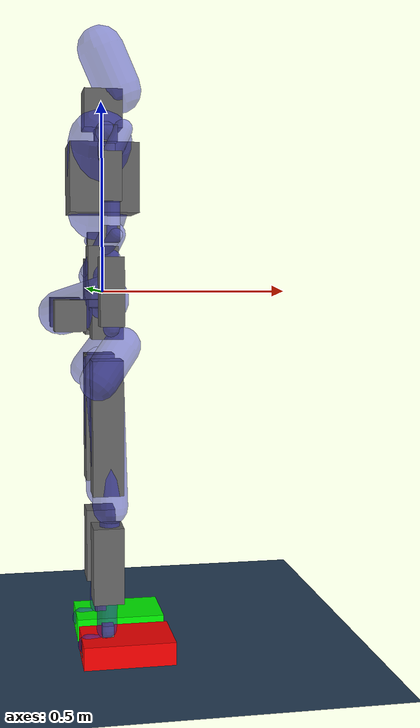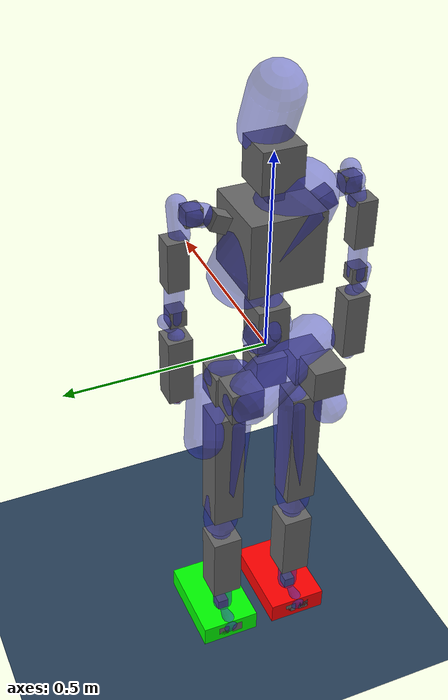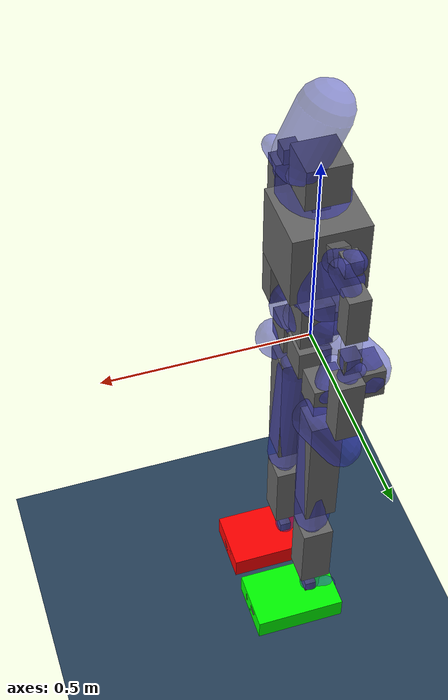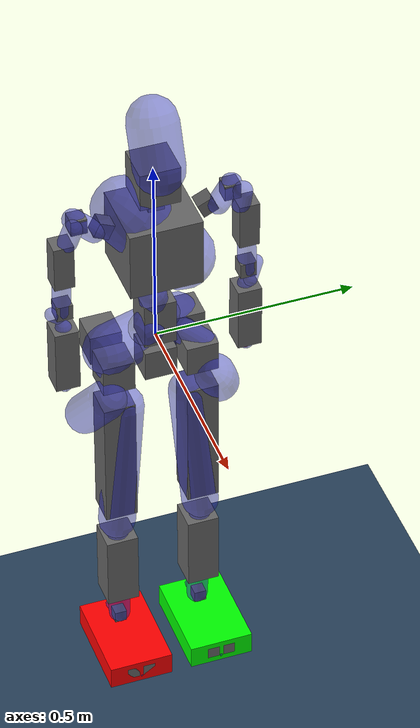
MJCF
<mujoco model="GR1T2">
  <compiler angle="radian" autolimits="true"/>
  <default>
    <motor ctrlrange="-1 1" ctrllimited="true"/>
    <default class="body">
      <geom type="box" condim="1" friction="1.0 0.05 0.05" solimp=".9 .99 .003" solref=".015 1"/>
      <joint type="hinge" limited="true" solimplimit="0 .99 .01"/>
      <site size="10" group="3"/>
    </default>
  </default>
  <asset>
    <material name="LightGrey" specular="0.9" shininess="0.9" rgba="0.4 0.4 0.4 1.0"/>
    <material name="Purple" specular="0.9" shininess="0.9" rgba="0.58 0.42 0.58 1.0"/>
    <material name="Black" specular="0.9" shininess="0.9" rgba="0.1 0.1 0.1 1.0"/>
    <texture type="skybox" builtin="gradient" rgb1=".3 .5 .7" rgb2="0 0 0" width="32" height="512"/>
    <texture name="body" type="cube" builtin="flat" mark="cross" width="128" height="128" rgb1="0.8 0.6 0.4" rgb2="0.8 0.6 0.4" markrgb="1 1 1" random="0.01"/>
    <material name="body" texture="body" texuniform="true" rgba="0.8 0.6 .4 1"/>
    <texture name="grid" type="2d" builtin="checker" width="512" height="512" rgb1=".1 .2 .3" rgb2=".2 .3 .4"/>
    <material name="grid" texture="grid" texrepeat="1 1" texuniform="true" reflectance="0.02"/>
    <mesh name="base" file="./meshes/base.STL"/>
    <mesh name="l_thigh_roll" file="./meshes/l_thigh_roll.STL"/>
    <mesh name="l_thigh_yaw" file="./meshes/l_thigh_yaw.STL"/>
    <mesh name="l_thigh_pitch" file="./meshes/l_thigh_pitch.STL"/>
    <mesh name="l_shank_pitch" file="./meshes/l_shank_pitch.STL"/>
    <mesh name="l_foot_pitch" file="./meshes/l_foot_pitch.STL"/>
    <mesh name="l_foot_roll" file="./meshes/l_foot_roll.STL"/>
    <mesh name="r_thigh_roll" file="./meshes/r_thigh_roll.STL"/>
    <mesh name="r_thigh_yaw" file="./meshes/r_thigh_yaw.STL"/>
    <mesh name="r_thigh_pitch" file="./meshes/r_thigh_pitch.STL"/>
    <mesh name="r_shank_pitch" file="./meshes/r_shank_pitch.STL"/>
    <mesh name="r_foot_pitch" file="./meshes/r_foot_pitch.STL"/>
    <mesh name="r_foot_roll" file="./meshes/r_foot_roll.STL"/>
    <mesh name="torso_waist_yaw" file="./meshes/waist_yaw.STL"/>
    <mesh name="torso_waist_pitch" file="./meshes/waist_pitch.STL"/>
    <mesh name="torso_waist_roll" file="./meshes/torso.STL"/>
    <mesh name="head_yaw" file="./meshes/head_yaw.STL"/>
    <mesh name="head_roll" file="./meshes/head_roll.STL"/>
    <mesh name="head_pitch" file="./meshes/head_pitch.STL"/>
    <mesh name="l_upper_arm_pitch" file="./meshes/l_upper_arm_pitch.STL"/>
    <mesh name="l_upper_arm_roll" file="./meshes/l_upper_arm_roll.STL"/>
    <mesh name="l_upper_arm_yaw" file="./meshes/l_upper_arm_yaw.STL"/>
    <mesh name="l_lower_arm_pitch" file="./meshes/l_lower_arm_pitch.STL"/>
    <mesh name="l_hand_yaw" file="./meshes/l_hand_yaw.STL"/>
    <mesh name="l_hand_roll" file="./meshes/l_hand_roll.STL"/>
    <mesh name="l_hand_pitch" file="./meshes/l_hand_pitch.STL"/>
    <mesh name="r_upper_arm_pitch" file="./meshes/r_upper_arm_pitch.STL"/>
    <mesh name="r_upper_arm_roll" file="./meshes/r_upper_arm_roll.STL"/>
    <mesh name="r_upper_arm_yaw" file="./meshes/r_upper_arm_yaw.STL"/>
    <mesh name="r_lower_arm_pitch" file="./meshes/r_lower_arm_pitch.STL"/>
    <mesh name="r_hand_yaw" file="./meshes/r_hand_yaw.STL"/>
    <mesh name="r_hand_roll" file="./meshes/r_hand_roll.STL"/>
    <mesh name="r_hand_pitch" file="./meshes/r_hand_pitch.STL"/>
  </asset>
  <worldbody>
    <camera mode="fixed" name="obs_hands" pos="0.3 0.000 1.535" xyaxes="0.000 1.000 0.000 -0.707 0.000 0.707"/>
    <geom name="floor" pos="0 0 -0.97" size="1 1 0.02" type="plane" material="grid"/>
    <body name="base">
      <freejoint/>
      <inertial pos="-0.0508888 0.000109183 -0.0455794" quat="0.706855 0.707166 0.0123661 -0.0109307" mass="6.45117" diaginertia="0.0149302 0.0127972 0.00640923"/>
      <body name="whole_body">
        <site name="pelvis" pos="0 0 0" size="0.06 0.06 0.06" rgba="1 0 0 0" type="sphere" group="1"/>
        <geom type="capsule" contype="0" conaffinity="0" group="1" density="0" material="Purple" pos="-0.054169 -0.013239 -0.037173" quat="0.640610 -0.688543 -0.339893 0.000000" size="0.061351 0.117647" rgba="0.2 0.2 0.8 0.5"/>
        <geom size="0.04 0.04 0.04" pos="0 0 -0.06" type="box" material="LightGrey"/>
        <camera mode="fixed" name="overshoulder" pos="0.15 0.0 0.6" xyaxes="0.00 -1.000 0.000 0.9 0.00 0.6"/>
        <camera mode="fixed" name="behindhead" pos="-0.1 0.0 0.9" xyaxes="0.00 -1.000 0.000 0.9 0.00 0.6"/>
        <body name="torso_waist_yaw" pos="0 0 0.0065">
          <site name="waist" pos="0 0 0" size="0.06 0.06 0.06" rgba="1 0 0 0" type="sphere" group="1"/>
          <inertial pos="-0.010388 -0.00169636 0.0224709" quat="8.03475e-05 0.752953 -6.91813e-06 0.658075" mass="0.37886" diaginertia="0.000387148 0.000354992 0.000193448"/>
          <joint name="torso_waist_yaw" pos="0 0 0" axis="0.0 0.0 1.0" range="-1.05 1.05"/>
          <geom type="capsule" contype="0" conaffinity="0" group="1" density="0" material="LightGrey" pos="-0.002163 -0.001751 0.034320" quat="0.719941 -0.590695 -0.364369 0.000000" size="0.042177 0.031440" rgba="0.2 0.2 0.8 0.5"/>
          <body name="torso_waist_pitch" pos="0 0 0.055">
            <inertial pos="0.00229173 -0.00229364 0.0425378" quat="0.998452 -0.0194486 0.0162447 0.0495079" mass="4.40328" diaginertia="0.00487449 0.00487146 0.00355351"/>
            <joint name="torso_waist_pitch" pos="0 0 0" axis="0.0 1.0 0.0" range="-0.52 1.22"/>
            <geom type="capsule" contype="0" conaffinity="0" group="1" density="0" material="LightGrey" pos="0.002900 -0.002971 0.040680" quat="0.248723 -0.439684 -0.863027 0.000000" size="0.034557 0.056915" rgba="0.2 0.2 0.8 0.5"/>
            <geom size="0.04 0.04 0.06" type="box" material="LightGrey"/>
            <body name="torso_waist_roll" pos="0 0 0.085">
              <site name="chest" pos="0 0 0.2" size="0.06 0.06 0.06" rgba="1 0 0 0" type="sphere" group="1"/>
              <inertial pos="-0.00982804 -1.2954e-05 0.160653" quat="0.999997 1.84368e-05 -0.00260593 -4.00255e-05" mass="7.34393" diaginertia="0.0305266 0.0217567 0.0136783"/>
              <joint name="torso_waist_roll" pos="0 0 0" axis="1.0 0.0 0.0" range="-0.7 0.7"/>
              <geom pos="-0.006930 0.000319 0.158087" type="capsule" contype="0" conaffinity="0" group="1" density="0" material="LightGrey" quat="0.327322 -0.944323 0.033386 0.000000" size="0.083806 0.105064" rgba="0.2 0.2 0.8 0.5"/>
              <geom size="0.09 0.09 0.09" pos="0 0 0.15" type="box" material="LightGrey"/>
              <body name="head_yaw" pos="0.001 -0.00022551 0.295">
                <site name="neck" pos="0 0 0" size="0.03 0.03 0.03" rgba="1 0 0 0" type="sphere" group="1"/>
                <inertial pos="0.000255273 -1.43143e-05 0.0571737" quat="0.698659 0.111628 0.112302 0.697713" mass="0.168425" diaginertia="0.00013241 0.000126266 6.86988e-05"/>
                <joint name="head_yaw" pos="0 0 0" axis="0.0 0.0 1.0" range="-1.5707963267948966 1.5707963267948966"/>
                <geom type="capsule" contype="0" conaffinity="0" group="1" density="0" material="LightGrey" pos="0.005641 0.000266 0.065163" quat="0.978189 -0.004686 0.207662 0.000000" size="0.021394 0.050376" rgba="0.2 0.2 0.8 0.5"/>
                <geom size="0.02 0.02 0.02" pos="0 0 -0.03" type="box" material="LightGrey"/>
                <body name="head_roll" pos="0 0 0">
                  <inertial pos="-0.000539717 0.00299723 -0.00194711" quat="0.498775 0.509039 0.50481 0.487104" mass="0.0189574" diaginertia="5.66154e-06 3.71917e-06 3.07146e-06"/>
                  <joint name="head_roll" pos="0 0 0" axis="1.0 0.0 0.0" range="-0.2617993877991494 0.2617993877991494"/>
                  <geom type="capsule" contype="0" conaffinity="0" group="1" density="0" material="LightGrey" pos="-0.000233 0.002188 -0.002696" quat="0.575952 -0.398999 0.713497 0.000000" size="0.016374 0.013112" rgba="0.2 0.2 0.8 0.5"/>
                  <geom size="0.02 0.02 0.02" pos="0 0 -0.1" type="box" material="LightGrey"/>
                  <body name="head_pitch" pos="0 5.373E-05 0.036">
                    <site name="head" pos="0 0 0" size="0.06 0.06 0.06" rgba="1 0 0 0" type="sphere" group="1"/>
                    <inertial pos="0.0179937 0.000157203 -0.0107884" quat="-0.00317787 0.890883 0.0047882 0.454197" mass="0.315067" diaginertia="0.00129389 0.00105273 0.000852366"/>
                    <joint name="head_pitch" pos="0 0 0" axis="0.0 1.0 0.0" range="-0.2617993877991494 0.2617993877991494"/>
                    <geom pos="0.021162 0.000154 0.106267" type="capsule" contype="0" conaffinity="0" group="1" density="0" mass="0.1" material="Black" quat="0.978740 -0.002484 -0.205090 0.000000" size="0.062047 0.056505" rgba="0.2 0.2 0.8 0.5"/>
                    <geom size="0.05 0.05 0.05" type="box" material="LightGrey"/>
                    <camera name="robotview" pos="0.13 0 0.09" xyaxes="0.00 -1.000 0.000 0.9 0.00 0.6" fovy="50"/>
                  </body>
                </body>
              </body>
              <body name="right_arm_mount" pos="0 -0.12664 0.21725" quat="0.976303 -0.216409 0 0">
                <site name="right_center" pos="0 0 0" size="0.01" rgba="1 0.3 0.3 1" group="2"/>
                <body name="r_upper_arm_pitch">
                  <site name="r_shoulder_site" pos="0 0 0" size="0.03 0.03 0.03" rgba="1 0 0 0" type="sphere" group="1"/>
                  <inertial pos="0.00515735 -0.0587916 0.000122944" quat="0.999675 -0.0254775 -0.000125407 -0.000494276" mass="0.777391" diaginertia="0.00054641 0.000340601 0.00031934"/>
                  <joint name="r_shoulder_pitch" pos="0 0 0" axis="0 1 0" range="-3.0 3.0"/>
                  <geom type="capsule" contype="0" conaffinity="0" group="1" density="0" material="LightGrey" pos="0.006727 -0.050572 -0.000309" quat="0.680625 -0.616956 0.395115 0.000000" size="0.026362 0.027838" rgba="0.2 0.2 0.8 0.5"/>
                  <geom size="0.02 0.02 0.02" type="box" material="LightGrey"/>
                  <body name="r_upper_arm_roll" pos="0 -0.067 0" quat="0.976303 0.216409 0 0">
                    <inertial pos="0.0260059 -0.0238264 -0.0272109" quat="0.906733 -0.298529 0.228698 0.190821" mass="0.0840989" diaginertia="9.66585e-05 8.99068e-05 2.54689e-05"/>
                    <joint name="r_shoulder_roll" pos="0 0 0" axis="1.0 0.0 0.0" range="-3.0 0.0"/>
                    <geom type="capsule" contype="0" conaffinity="0" group="1" density="0" material="LightGrey" pos="0.019434 -0.022424 -0.019131" quat="0.216894 0.193656 -0.956794 0.000000" size="0.023799 0.032347" rgba="0.2 0.2 0.8 0.5"/>
                    <geom size="0.02 0.02 0.02" type="box" material="LightGrey"/>
                    <body name="r_upper_arm_yaw" pos="0 -0.039996 -0.057473">
                      <site name="r_collar_site" pos="0 0 0" size="0.03 0.03 0.03" rgba="1 0 0 0" type="sphere" group="1"/>
                      <inertial pos="0.00017083 -0.00124148 -0.100981" quat="0.712176 -0.02561 0.0250075 0.701088" mass="0.78993" diaginertia="0.000481112 0.000420147 0.000315576"/>
                      <joint name="r_shoulder_yaw" pos="0 0 0" axis="0.0 0.0 1.0" range="-3.0 3.0"/>
                      <geom type="capsule" contype="0" conaffinity="0" group="1" density="0" material="LightGrey" pos="-0.000236 -0.000302 -0.107230" quat="0.008193 0.998724 -0.049842 0.000000" size="0.022825 0.086807" rgba="0.2 0.2 0.8 0.5"/>
                      <geom size="0.025 0.025 0.06" pos="0 0 -0.05" type="box" material="LightGrey"/>
                      <body name="r_lower_arm_pitch" pos="0 1.28859e-05 -0.18853">
                        <site name="r_elbow_site" pos="0 0 0" size="0.03 0.03 0.03" rgba="1 0 0 0" type="sphere" group="1"/>
                        <inertial pos="2.54538e-07 -0.0196908 -0.0210929" quat="0.675237 0.209883 -0.209892 0.67524" mass="0.0553958" diaginertia="2.92256e-05 2.63267e-05 1.3293e-05"/>
                        <joint name="r_elbow_pitch" pos="0 0 0" axis="0.0 1.0 0.0" range="-3.0 0.0"/>
                        <geom type="capsule" contype="0" conaffinity="0" group="1" density="0" material="LightGrey" pos="-0.001610 -0.017952 -0.018729" quat="0.926044 0.275836 0.257597 0.000000" size="0.016705 0.022042" rgba="0.2 0.2 0.8 0.5"/>
                        <geom size="0.02 0.02 0.02" type="box" material="LightGrey"/>
                        <body name="r_hand_yaw" pos="0 0 -0.0405">
                          <inertial pos="0.000158044 -0.000478822 -0.0559415" quat="0.999772 0.019131 0.00724385 -0.00608553" mass="0.606076" diaginertia="0.000748132 0.000708413 0.000280748"/>
                          <joint name="r_wrist_yaw" pos="0 0 0" axis="0.0 0.0 1.0" range="-3.0 3.0"/>
                          <geom type="capsule" contype="0" conaffinity="0" group="1" density="0" material="LightGrey" pos="0.000983 0.000256 -0.104600" quat="0.008367 -0.112258 -0.993644 0.000000" size="0.020549 0.086419" rgba="0.2 0.2 0.8 0.5"/>
                          <geom size="0.03 0.03 0.085" pos="0 0 -0.1" type="box" material="LightGrey"/>
                          <body name="r_hand_roll" pos="0 1.3775e-05 -0.20153">
                            <inertial pos="1.5545e-08 0.00044846 4.1938e-08" quat="0 0.707105 0 0.707108" mass="0.0054473" diaginertia="3.6036e-07 3.5527e-07 7.344e-08"/>
                            <joint name="r_wrist_roll" pos="0 0 0" axis="1.0 0.0 0.0" range="-1.5 1.5"/>
                            <geom type="capsule" contype="0" conaffinity="0" group="1" density="0" material="LightGrey" pos="-0.000002 0.000605 -0.000011" quat="0.705891 -0.002537 0.708316 0.000000" size="0.004007 0.013249" rgba="0.2 0.2 0.8 0.5"/>
                            <body name="r_hand_pitch">
                              <site name="r_wrist_site" pos="0 0 0" size="0.03 0.03 0.03" rgba="1 0 0 0" type="sphere" group="1"/>
                              <inertial pos="0.0060733 0.0018907 -0.084578" quat="0.647336 -0.27161 -0.257721 0.6639" mass="0.53221" diaginertia="0.000319947 0.000196296 0.000182477"/>
                              <joint name="r_wrist_pitch" pos="0 0 0" axis="0.0 1.0 0.0" range="-1.5 1.5"/>
                              <body name="right_eef" pos="0 0 0" quat="-0.707107 0 0 0.707107">
                                <body name="right_mount" quat="0 0 1 0"/>
                                <body name="right_hand_eef" pos="0 0 0"/>
                                <camera mode="fixed" name="eye_in_right_hand" pos="-0.05 0.15 0.0" quat="0.965926 -0.258819 0.000000 0.000000" fovy="75"/>
                              </body>
                            </body>
                          </body>
                        </body>
                      </body>
                    </body>
                  </body>
                </body>
              </body>
              <body name="left_arm_mount" pos="0 0.12661 0.21727" quat="0.976289 0.216473 0 0">
                <site name="left_center" pos="0 0 0" size="0.01" rgba="1 0.3 0.3 1" group="2"/>
                <body name="l_upper_arm_pitch">
                  <site name="l_shoulder_site" pos="0 0 0" size="0.03 0.03 0.03" rgba="1 0 0 0" type="sphere" group="1"/>
                  <inertial pos="0.00515733 0.0588337 0.000122944" quat="0.999793 0.0203364 -0.000117253 0.0011083" mass="0.777394" diaginertia="0.000546411 0.000340581 0.000319359"/>
                  <joint name="l_shoulder_pitch" pos="0 0 0" axis="0.0 1.0 0.0" range="-3.0 3.0"/>
                  <geom type="capsule" contype="0" conaffinity="0" group="1" density="0" material="LightGrey" pos="0.006944 0.049860 -0.000632" quat="0.668294 0.652120 0.357944 0.000000" size="0.026473 0.027620" rgba="0.2 0.2 0.8 0.5"/>
                  <geom size="0.02 0.02 0.02" type="box" material="LightGrey"/>
                  <body name="l_upper_arm_roll" pos="0 0.067 0" quat="0.976289 -0.216473 0 0">
                    <inertial pos="0.0260055 0.0238305 -0.0272078" quat="0.906707 0.298574 0.228734 -0.190834" mass="0.084111" diaginertia="9.66711e-05 8.99184e-05 2.54726e-05"/>
                    <joint name="l_shoulder_roll" pos="0 0 0" axis="1.0 0.0 0.0" range="0.0 3.0"/>
                    <geom type="capsule" contype="0" conaffinity="0" group="1" density="0" material="LightGrey" pos="0.019437 0.022244 -0.018945" quat="0.212418 -0.172409 -0.961849 0.000000" size="0.023626 0.031963" rgba="0.2 0.2 0.8 0.5"/>
                    <geom size="0.02 0.02 0.02" type="box" material="LightGrey"/>
                    <body name="l_upper_arm_yaw" pos="0 0.040004 -0.057502">
                      <site name="l_collar_site" pos="0 0 0" size="0.03 0.03 0.03" rgba="1 0 0 0" type="sphere" group="1"/>
                      <inertial pos="-4.12427e-05 0.00135031 -0.101007" quat="0.706543 0.0248514 -0.0268343 0.706724" mass="0.78993" diaginertia="0.000480863 0.000420363 0.000315608"/>
                      <joint name="l_shoulder_yaw" pos="0 0 0" axis="0.0 0.0 1.0" range="-3.0 3.0"/>
                      <geom type="capsule" contype="0" conaffinity="0" group="1" density="0" material="LightGrey" pos="0.000242 0.001006 -0.107222" quat="0.014087 -0.999900 0.001159 0.000000" size="0.022737 0.086998" rgba="0.2 0.2 0.8 0.5"/>
                      <geom size="0.025 0.025 0.06" pos="0 0 -0.05" type="box" material="LightGrey"/>
                      <body name="l_lower_arm_pitch" pos="0 1.28869e-05 -0.188546">
                        <site name="l_elbow_site" pos="0 0 0" size="0.03 0.03 0.03" rgba="1 0 0 0" type="sphere" group="1"/>
                        <inertial pos="2.60519e-07 0.0196937 -0.0210902" quat="0.675254 -0.209845 0.209837 0.675252" mass="0.0553958" diaginertia="2.92256e-05 2.63267e-05 1.3293e-05"/>
                        <joint name="l_elbow_pitch" pos="0 0 0" axis="0.0 1.0 0.0" range="-3.0 0.0"/>
                        <geom type="capsule" contype="0" conaffinity="0" group="1" density="0" material="LightGrey" pos="0.001420 0.018112 -0.018740" quat="0.376710 0.668972 0.640754 0.000000" size="0.016844 0.021856" rgba="0.2 0.2 0.8 0.5"/>
                        <geom size="0.02 0.02 0.02" type="box" material="LightGrey"/>
                        <body name="l_hand_yaw" pos="0 0 -0.0405043">
                          <inertial pos="-4.20996e-05 0.000336116 -0.0559829" quat="0.999784 -0.0189715 -0.00676208 0.00509819" mass="0.606076" diaginertia="0.000747266 0.000709257 0.000280769"/>
                          <joint name="l_wrist_yaw" pos="0 0 0" axis="0.0 0.0 1.0" range="-3.0 3.0"/>
                          <geom type="capsule" contype="0" conaffinity="0" group="1" density="0" material="LightGrey" pos="-0.001048 0.000445 -0.104590" quat="0.008690 -0.331888 0.943279 0.000000" size="0.020500 0.086460" rgba="0.2 0.2 0.8 0.5"/>
                          <geom size="0.03 0.03 0.085" pos="0 0 -0.1" type="box" material="LightGrey"/>
                          <body name="l_hand_roll" pos="0 1.3775e-05 -0.20155">
                            <inertial pos="-1.5483e-08 -0.00044846 -1.9394e-08" quat="0 0.7071 0 0.707114" mass="0.0054473" diaginertia="3.6036e-07 3.5527e-07 7.344e-08"/>
                            <joint name="l_wrist_roll" pos="0 0 0" axis="1.0 0.0 0.0" range="-1.5 1.5"/>
                            <geom type="capsule" contype="0" conaffinity="0" group="1" density="0" material="LightGrey" pos="-0.000000 -0.000616 0.000003" quat="0.707195 -0.000647 -0.707018 0.000000" size="0.003972 0.013279" rgba="0.2 0.2 0.8 0.5"/>
                            <body name="l_hand_pitch">
                              <joint name="l_wrist_pitch" pos="0 0 0" axis="0.0 1.0 0.0" range="-1.5 1.5"/>
                              <site name="l_wrist_site" pos="0 0 0" size="0.03 0.03 0.03" rgba="1 0 0 0" type="sphere" group="1"/>
                              <inertial pos="0.0071289 -0.0026192 -0.078567" quat="0.298548 0.646339 0.631172 0.307795" mass="0.5239" diaginertia="0.000345825 0.000211684 0.000195941"/>
                              <body name="left_eef" pos="0 0 0" quat="0.707107 0 0 0.707107">
                                <site name="left_eef_site" pos="0 0 0" size="0.01" rgba="1 0.3 0.3 1" group="2"/>
                                <body name="left_mount" quat="0 0 1 0"/>
                                <body name="left_hand_eefd" pos="0 0 0"/>
                                <camera mode="fixed" name="eye_in_left_hand" pos="-0.05 -0.15 0.0" quat="0.000000 -0.000000 -0.258819 0.965926" fovy="75"/>
                              </body>
                            </body>
                          </body>
                        </body>
                      </body>
                    </body>
                  </body>
                </body>
              </body>
            </body>
          </body>
        </body>
        <body name="lower_body">
          <body name="l_thigh_roll" pos="-0.047999 0.105 -0.057493">
            <inertial pos="0.04163 3.4568e-05 -0.0021382" quat="0.575529 0.581908 -0.40597 0.406619" mass="1.1437" diaginertia="0.00117548 0.00100413 0.000943892"/>
            <joint name="l_leg_hip_roll" pos="0 0 0" axis="1.0 0.0 0.0" range="-0.09 0.79"/>
            <geom type="capsule" contype="0" conaffinity="0" group="1" density="0" material="LightGrey" pos="0.035820 -0.003125 0.007581" quat="0.820938 0.418627 -0.388345 0.000000" size="0.032717 0.028471" rgba="0.2 0.2 0.8 0.5"/>
            <geom size="0.04 0.04 0.04" pos="-0.046 0 0" type="box" material="LightGrey"/>
            <body name="l_thigh_yaw" pos="0.048 0 -0.030499">
              <inertial pos="0.00018348 0.046462 -0.10389" quat="0.704251 -0.0226446 -0.0453749 0.708138" mass="3.9888" diaginertia="0.0163385 0.0100158 0.00924336"/>
              <joint name="l_leg_hip_yaw" pos="0 0 0" axis="0.0 0.0 1.0" range="-0.7 0.7"/>
              <geom type="capsule" contype="0" conaffinity="0" group="1" density="0" material="LightGrey" pos="0.004995 0.048012 -0.090687" quat="0.943090 0.156552 0.293382 0.000000" size="0.049338 0.056249" rgba="0.2 0.2 0.8 0.5"/>
              <geom size="0.04 0.04 0.04" pos="0 0 0.01" type="box" material="LightGrey"/>
              <body name="l_thigh_pitch" pos="0 0 -0.11">
                <inertial pos="0.0028493 -0.021688 -0.090886" quat="0.707411 -0.0125435 -0.0111264 0.706604" mass="6.369" diaginertia="0.0532352 0.0425096 0.0134363"/>
                <joint name="l_leg_hip_pitch" pos="0 0 0" axis="0.0 1.0 0.0" range="-1.75 0.7"/>
                <geom type="capsule" contype="0" conaffinity="0" group="1" density="0" material="LightGrey" pos="0.004412 -0.011886 -0.180298" quat="0.041426 -0.967565 0.249203 0.000000" size="0.046052 0.181337" rgba="0.2 0.2 0.8 0.5"/>
                <geom size="0.04 0.04 0.175" pos="0 0 -0.15" type="box" material="LightGrey"/>
                <body name="l_shank_pitch" pos="0 2.4606e-05 -0.36">
                  <inertial pos="0.0024312 -2.9945e-05 -0.11554" quat="0.692137 0.00134576 0.00140217 0.721764" mass="2.1895" diaginertia="0.0162703 0.016117 0.00113627"/>
                  <joint name="l_leg_knee_pitch" pos="0 0 0" axis="0.0 1.0 0.0" range="-0.09 1.92"/>
                  <geom type="capsule" contype="0" conaffinity="0" group="1" density="0" material="LightGrey" pos="0.002532 0.000234 -0.152380" quat="0.999869 -0.007638 0.014285 0.000000" size="0.026659 0.174661" rgba="0.2 0.2 0.8 0.5"/>
                  <geom size="0.04 0.04 0.1" pos="0 0 -0.15" type="box" material="LightGrey"/>
                  <body name="l_foot_pitch" pos="0 2.3239e-05 -0.34">
                    <inertial pos="1.748e-11 4.3804e-11 0" quat="1 3.42295e-05 -6.07362e-06 -2.07897e-10" mass="0.080335" diaginertia="5.1022e-06 4.3976e-06 4.188e-06"/>
                    <joint name="l_leg_ankle_pitch" pos="0 0 0" axis="0.0 1.0 0.0" range="-1.05 0.52"/>
                    <geom type="capsule" contype="0" conaffinity="0" group="1" density="0" material="LightGrey" pos="-0.000025 0.000268 -0.000004" quat="0.608990 -0.642425 -0.465212 0.000000" size="0.010070 0.006976" rgba="0.2 0.2 0.8 0.5"/>
                    <geom size="0.015 0.015 0.015" pos="0 0 0.01" type="box" material="LightGrey"/>
                    <body name="l_foot_roll">
                      <inertial pos="0.039446 0.00035757 -0.038101" quat="-0.00087198 0.709539 -0.00177594 0.704664" mass="0.584" diaginertia="0.00271032 0.0024027 0.000369145"/>
                      <joint name="l_leg_ankle_roll" pos="0 0 0" axis="1.0 0.0 0.0" range="-0.44 0.44"/>
                      <geom type="capsule" contype="0" conaffinity="0" group="1" density="0" material="Black" pos="0.045969 -0.000249 -0.037363" quat="0.749466 -0.002549 -0.662038 0.000000" size="0.026544 0.098967" rgba="0.2 0.2 0.8 0.5"/>
                      <geom name="l_foot_1" size="0.015 0.015 0.12" pos="0.05 0.02 -0.035" quat="0.707105 0 0.707108 0" type="box" material="LightGrey"/>
                      <geom name="l_foot_2" size="0.015 0.015 0.12" pos="0.05 -0.02 -0.035" quat="0.707105 0 0.707108 0" type="box" material="LightGrey"/>
                      <geom name="geom_left_A1_col" size="0.03 .08 0.12" pos="0.05 0 -0.035" quat="0.707105 0 0.707108 0" type="box" rgba="0 1 0 1"/>
                      <body name="left_foot" pos="0 0 -0.076" quat="1 0 0 0"/>
                    </body>
                  </body>
                </body>
              </body>
            </body>
          </body>
          <body name="r_thigh_roll" pos="-0.047999 -0.105 -0.057508">
            <inertial pos="0.0416295 3.45678e-05 -0.00213824" quat="0.57555 0.581927 -0.405942 0.406589" mass="1.14367" diaginertia="0.00117548 0.00100417 0.000943891"/>
            <joint name="r_leg_hip_roll" pos="0 0 0" axis="1.0 0.0 0.0" range="-0.79 0.09"/>
            <geom type="capsule" contype="0" conaffinity="0" group="1" density="0" material="LightGrey" pos="0.035711 0.002851 0.007584" quat="0.570078 0.582654 0.579246 0.000000" size="0.032702 0.028784" rgba="0.2 0.2 0.8 0.5"/>
            <geom size="0.04 0.04 0.04" pos="-0.046 0 0" type="box" material="LightGrey"/>
            <body name="r_thigh_yaw" pos="0.048 0 -0.030499">
              <inertial pos="-0.00159762 -0.0464482 -0.103899" quat="0.709186 -0.0420808 -0.0194028 0.703497" mass="3.98882" diaginertia="0.0163388 0.0100142 0.00924469"/>
              <joint name="r_leg_hip_yaw" pos="0 0 0" axis="0.0 0.0 1.0" range="-0.7 0.7"/>
              <geom type="capsule" contype="0" conaffinity="0" group="1" density="0" material="LightGrey" pos="0.004955 -0.047840 -0.090524" quat="0.941202 -0.162000 0.296470 0.000000" size="0.049339 0.055724" rgba="0.2 0.2 0.8 0.5"/>
              <geom size="0.04 0.04 0.04" pos="0 0 0.01" type="box" material="LightGrey"/>
              <body name="r_thigh_pitch" pos="0 0 -0.11">
                <inertial pos="0.002842 0.0217009 -0.0919987" quat="0.706586 -0.0113774 -0.0126258 0.707423" mass="6.36895" diaginertia="0.0532349 0.0424818 0.0134641"/>
                <joint name="r_leg_hip_pitch" pos="0 0 0" axis="0.0 1.0 0.0" range="-1.75 0.7"/>
                <geom type="capsule" contype="0" conaffinity="0" group="1" density="0" material="LightGrey" pos="0.004356 0.012202 -0.180557" quat="0.999135 -0.040400 -0.009812 0.000000" size="0.046171 0.181461" rgba="0.2 0.2 0.8 0.5"/>
                <geom size="0.04 0.04 0.175" pos="0 0 -0.15" type="box" material="LightGrey"/>
                <body name="r_shank_pitch" pos="0 2.4606e-05 -0.36">
                  <inertial pos="0.00236658 4.56188e-05 -0.115532" quat="0.71872 0.00154106 0.00120241 0.695296" mass="2.18947" diaginertia="0.0162708 0.0161183 0.00113536"/>
                  <joint name="r_leg_knee_pitch" pos="0 0 0" axis="0.0 1.0 0.0" range="-0.09 1.92"/>
                  <geom type="capsule" contype="0" conaffinity="0" group="1" density="0" material="LightGrey" pos="0.002414 -0.000049 -0.152302" quat="0.016226 -0.421057 -0.906889 0.000000" size="0.026563 0.174789" rgba="0.2 0.2 0.8 0.5"/>
                  <geom size="0.04 0.04 0.1" pos="0 0 -0.15" type="box" material="LightGrey"/>
                  <body name="r_foot_pitch" pos="0 2.3239e-05 -0.34">
                    <inertial pos="1.75705e-11 4.40342e-11 0" quat="1 3.42336e-05 -6.07409e-06 -2.07938e-10" mass="0.0799219" diaginertia="5.11122e-06 4.40004e-06 4.17954e-06"/>
                    <joint name="r_leg_ankle_pitch" pos="0 0 0" axis="0.0 1.0 0.0" range="-1.05 0.52"/>
                    <geom type="capsule" contype="0" conaffinity="0" group="1" density="0" material="LightGrey" pos="-0.000138 -0.000206 0.000070" quat="0.771020 0.504063 -0.389165 0.000000" size="0.010019 0.006930" rgba="0.2 0.2 0.8 0.5"/>
                    <geom size="0.015 0.015 0.015" pos="0 0 0.01" type="box" material="LightGrey"/>
                    <body name="r_foot_roll">
                      <inertial pos="0.043909 -0.00032475 -0.039419" quat="0.000727105 0.710094 0.00155959 0.704104" mass="0.58089" diaginertia="0.00280098 0.0024886 0.000368482"/>
                      <joint name="r_leg_ankle_roll" pos="0 0 0" axis="1.0 0.0 0.0" range="-0.44 0.44"/>
                      <geom type="capsule" contype="0" conaffinity="0" group="1" density="0" material="Black" pos="0.045874 -0.000109 -0.037439" quat="0.662996 -0.005100 0.748606 0.000000" size="0.026373 0.099083" rgba="0.2 0.2 0.8 0.5"/>
                      <geom name="r_foot_1" size="0.015 0.015 0.12" pos="0.05 0.02 -0.035" quat="0.707105 0 0.707108 0" type="box" material="LightGrey"/>
                      <geom name="r_foot_2" size="0.015 0.015 0.12" pos="0.05 -0.02 -0.035" quat="0.707105 0 0.707108 0" type="box" material="LightGrey"/>
                      <geom name="geom_right_A1_col" size="0.03 .08 0.12" pos="0.05 0 -0.035" quat="0.707105 0 0.707108 0" type="box" rgba="1 0 0 1"/>
                      <body name="right_foot" pos="0 0 -0.076" quat="1 0 0 0"/>
                    </body>
                  </body>
                </body>
              </body>
            </body>
          </body>
        </body>
      </body>
    </body>
  </worldbody>
  <actuator>
    <motor ctrllimited="true" ctrlrange="-20000 20000" joint="torso_waist_yaw" name="torso_waist_yaw"/>
    <motor ctrllimited="true" ctrlrange="-20000 20000" joint="torso_waist_pitch" name="torso_waist_pitch"/>
    <motor ctrllimited="true" ctrlrange="-20000 20000" joint="torso_waist_roll" name="torso_waist_roll"/>
    <motor ctrllimited="true" ctrlrange="-20000 20000" joint="head_yaw" name="head_yaw"/>
    <motor ctrllimited="true" ctrlrange="-20000 20000" joint="head_roll" name="head_roll"/>
    <motor ctrllimited="true" ctrlrange="-20000 20000" joint="head_pitch" name="head_pitch"/>
    <motor ctrllimited="true" ctrlrange="-20000 20000" joint="r_shoulder_pitch" name="r_shoulder_pitch"/>
    <motor ctrllimited="true" ctrlrange="-20000 20000" joint="r_shoulder_roll" name="r_shoulder_roll"/>
    <motor ctrllimited="true" ctrlrange="-20000 20000" joint="r_shoulder_yaw" name="r_shoulder_yaw"/>
    <motor ctrllimited="true" ctrlrange="-20000 20000" joint="r_elbow_pitch" name="r_elbow_pitch"/>
    <motor ctrllimited="true" ctrlrange="-20000 20000" joint="r_wrist_yaw" name="r_wrist_yaw"/>
    <motor ctrllimited="true" ctrlrange="-20000 20000" joint="r_wrist_roll" name="r_wrist_roll"/>
    <motor ctrllimited="true" ctrlrange="-20000 20000" joint="r_wrist_pitch" name="r_wrist_pitch"/>
    <motor ctrllimited="true" ctrlrange="-20000 20000" joint="l_shoulder_pitch" name="l_shoulder_pitch"/>
    <motor ctrllimited="true" ctrlrange="-20000 20000" joint="l_shoulder_roll" name="l_shoulder_roll"/>
    <motor ctrllimited="true" ctrlrange="-20000 20000" joint="l_shoulder_yaw" name="l_shoulder_yaw"/>
    <motor ctrllimited="true" ctrlrange="-20000 20000" joint="l_elbow_pitch" name="l_elbow_pitch"/>
    <motor ctrllimited="true" ctrlrange="-20000 20000" joint="l_wrist_yaw" name="l_wrist_yaw"/>
    <motor ctrllimited="true" ctrlrange="-20000 20000" joint="l_wrist_roll" name="l_wrist_roll"/>
    <motor ctrllimited="true" ctrlrange="-20000 20000" joint="l_wrist_pitch" name="l_wrist_pitch"/>
    <motor ctrllimited="true" ctrlrange="-20000 20000" joint="l_leg_hip_roll" name="l_leg_hip_roll"/>
    <motor ctrllimited="true" ctrlrange="-20000 20000" joint="l_leg_hip_yaw" name="l_leg_hip_yaw"/>
    <motor ctrllimited="true" ctrlrange="-20000 20000" joint="l_leg_hip_pitch" name="l_leg_hip_pitch"/>
    <motor ctrllimited="true" ctrlrange="-20000 20000" joint="l_leg_knee_pitch" name="l_leg_knee_pitch"/>
    <motor ctrllimited="true" ctrlrange="-20000 20000" joint="l_leg_ankle_pitch" name="l_leg_ankle_pitch"/>
    <motor ctrllimited="true" ctrlrange="-20000 20000" joint="l_leg_ankle_roll" name="l_leg_ankle_roll"/>
    <motor ctrllimited="true" ctrlrange="-20000 20000" joint="r_leg_hip_roll" name="r_leg_hip_roll"/>
    <motor ctrllimited="true" ctrlrange="-20000 20000" joint="r_leg_hip_yaw" name="r_leg_hip_yaw"/>
    <motor ctrllimited="true" ctrlrange="-20000 20000" joint="r_leg_hip_pitch" name="r_leg_hip_pitch"/>
    <motor ctrllimited="true" ctrlrange="-20000 20000" joint="r_leg_knee_pitch" name="r_leg_knee_pitch"/>
    <motor ctrllimited="true" ctrlrange="-20000 20000" joint="r_leg_ankle_pitch" name="r_leg_ankle_pitch"/>
    <motor ctrllimited="true" ctrlrange="-20000 20000" joint="r_leg_ankle_roll" name="r_leg_ankle_roll"/>
  </actuator>
  <contact>
    <exclude name="upper_lower_body" body1="torso_waist_yaw" body2="lower_body"/>
    <exclude name="torso_head_1" body1="torso_waist_roll" body2="head_yaw"/>
    <exclude name="torso_head_2" body1="torso_waist_roll" body2="head_roll"/>
    <exclude name="torso_head_3" body1="torso_waist_roll" body2="head_pitch"/>
    <exclude name="head_1" body1="head_roll" body2="head_yaw"/>
    <exclude name="head_2" body1="head_pitch" body2="head_yaw"/>
  </contact>
</mujoco>
